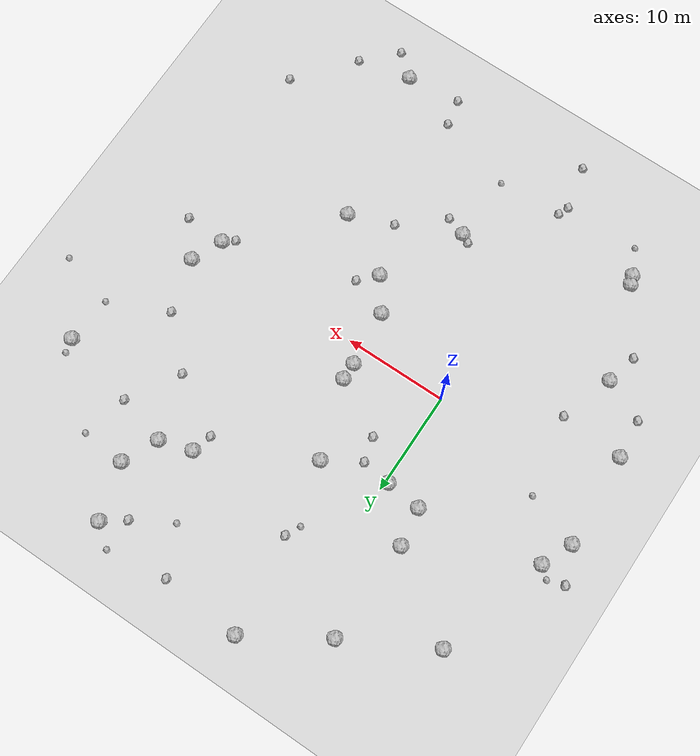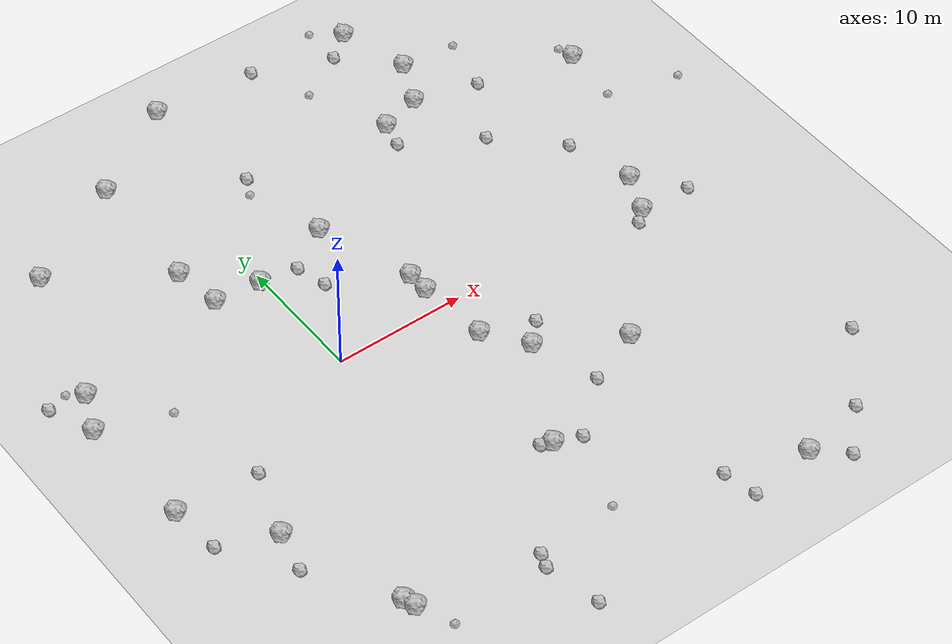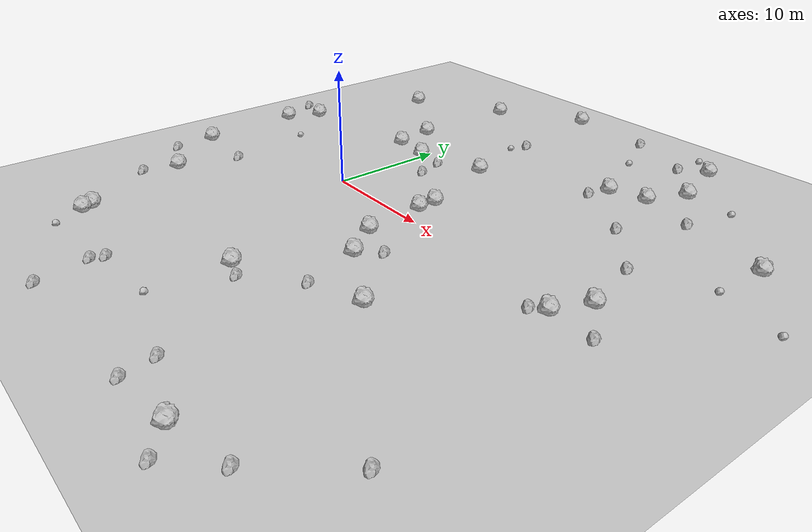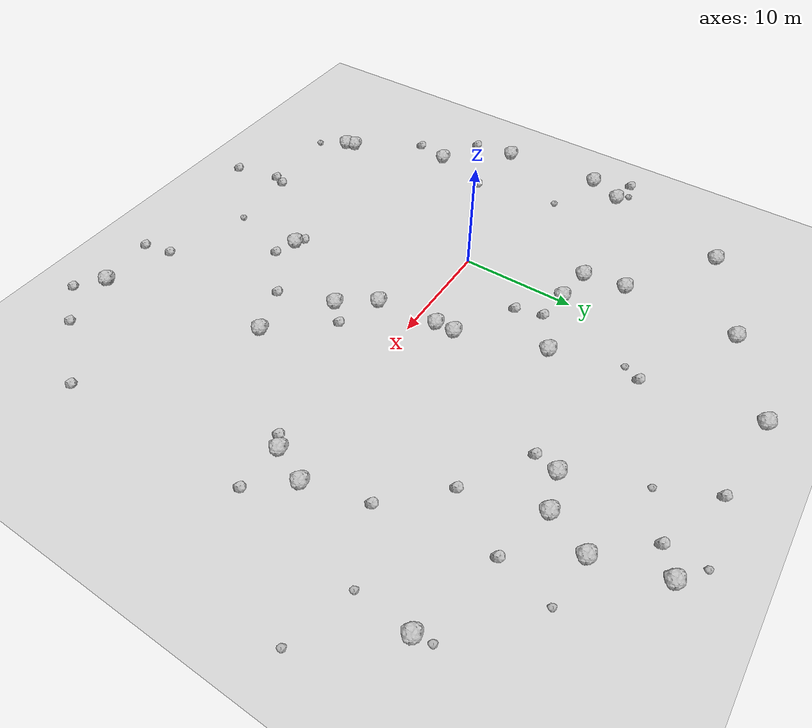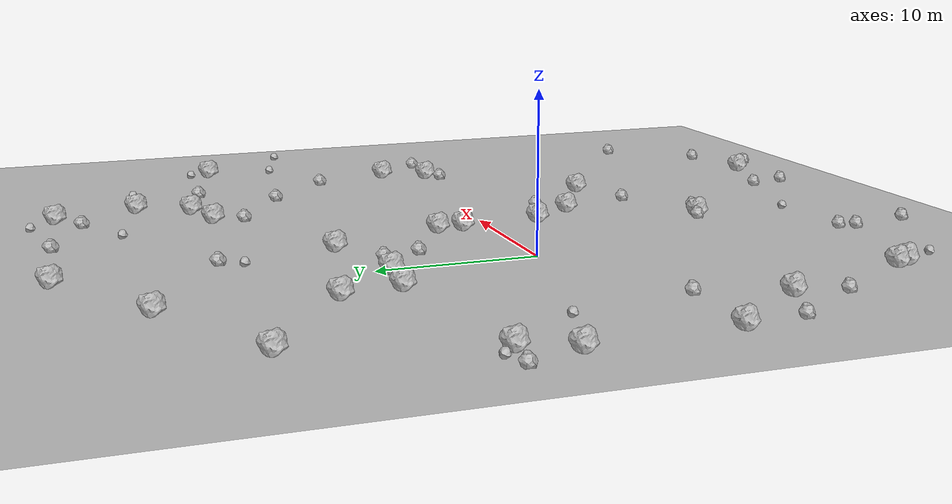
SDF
<sdf version="1.6">
 <world name="default">
  <include><uri>model://custom_ground</uri></include>
  <include><uri>model://sun</uri></include>
  <model name="rock1_0_0">
   <include><uri>model://rock1</uri><pose>-3.738427115198281 9.504144964753863 0.5 0 0 0</pose></include>
  </model>
  <model name="rock1_0_1">
   <include><uri>model://rock1</uri><pose>-3.936543423529187 23.03565781235109 0.5 0 0 0</pose></include>
  </model>
  <model name="rock1_0_2">
   <include><uri>model://rock1</uri><pose>-15.478508543491502 7.579801884550001 0.5 0 0 0</pose></include>
  </model>
  <model name="rock1_0_3">
   <include><uri>model://rock1</uri><pose>19.154230941098746 26.34770567985283 0.5 0 0 0</pose></include>
  </model>
  <model name="rock1_0_4">
   <include><uri>model://rock1</uri><pose>-16.26952670117127 -4.461578754564503 0.5 0 0 0</pose></include>
  </model>
  <model name="rock1_0_5">
   <include><uri>model://rock1</uri><pose>15.943776720668993 16.52844910317186 0.5 0 0 0</pose></include>
  </model>
  <model name="rock1_0_6">
   <include><uri>model://rock1</uri><pose>-8.70427945747763 -18.990837485125937 0.5 0 0 0</pose></include>
  </model>
  <model name="rock1_0_7">
   <include><uri>model://rock1</uri><pose>8.453705279977676 1.7365136836152466 0.5 0 0 0</pose></include>
  </model>
  <model name="rock1_0_8">
   <include><uri>model://rock1</uri><pose>8.423877939947715 3.445662174818551 0.5 0 0 0</pose></include>
  </model>
  <model name="rock1_0_9">
   <include><uri>model://rock1</uri><pose>-8.395035605716787 -19.852879169549713 0.5 0 0 0</pose></include>
  </model>
  <model name="rock1_0_10">
   <include><uri>model://rock1</uri><pose>-0.26383050366483474 9.12248176850354 0.5 0 0 0</pose></include>
  </model>
  <model name="rock1_0_11">
   <include><uri>model://rock1</uri><pose>11.188383665316525 -6.680695017462053 0.5 0 0 0</pose></include>
  </model>
  <model name="rock1_0_12">
   <include><uri>model://rock1</uri><pose>8.991772287947537 -3.6726403704004937 0.5 0 0 0</pose></include>
  </model>
  <model name="rock1_0_13">
   <include><uri>model://rock1</uri><pose>19.106031934486246 17.47323544988634 0.5 0 0 0</pose></include>
  </model>
  <model name="rock1_0_14">
   <include><uri>model://rock1</uri><pose>20.69733186675945 20.93994824646586 0.5 0 0 0</pose></include>
  </model>
  <model name="rock1_0_15">
   <include><uri>model://rock1</uri><pose>-4.298889402488381 13.167860747408412 0.5 0 0 0</pose></include>
  </model>
  <model name="rock1_0_16">
   <include><uri>model://rock1</uri><pose>-16.774803432463234 4.585380853515822 0.5 0 0 0</pose></include>
  </model>
  <model name="rock1_0_17">
   <include><uri>model://rock1</uri><pose>25.33484628785105 -1.1552003946533453 0.5 0 0 0</pose></include>
  </model>
  <model name="rock1_0_18">
   <include><uri>model://rock1</uri><pose>3.4173082205525454 27.640051545276556 0.5 0 0 0</pose></include>
  </model>
  <model name="rock1_0_19">
   <include><uri>model://rock1</uri><pose>17.05080156257562 -10.013613309631179 0.5 0 0 0</pose></include>
  </model>
  <model name="rock1_0_20">
   <include><uri>model://rock1</uri><pose>5.934472380701209 10.839916025522193 0.5 0 0 0</pose></include>
  </model>
  <model name="rock1_0_21">
   <include><uri>model://rock1</uri><pose>6.9422198867153675 -14.408914886011415 0.5 0 0 0</pose></include>
  </model>
  <model name="rock1_0_22">
   <include><uri>model://rock1</uri><pose>26.659840950833612 1.8602126845654325 0.5 0 0 0</pose></include>
  </model>
  <model name="rock1_0_23">
   <include><uri>model://rock1</uri><pose>31.318294984057935 14.276614448736048 0.5 0 0 0</pose></include>
  </model>
  <model name="rock1_0_24">
   <include><uri>model://rock1</uri><pose>-11.841794358269308 -10.021645544380753 0.5 0 0 0</pose></include>
  </model>
  <model name="rock1_0_25">
   <include><uri>model://rock1</uri><pose>19.959483772943564 -25.055293831240625 0.5 0 0 0</pose></include>
  </model>
  <model name="rock1_0_26">
   <include><uri>model://rock1</uri><pose>-12.231818277003585 18.525813914747914 0.5 0 0 0</pose></include>
  </model>
  <model name="rock2_0_0">
   <include><uri>model://rock2</uri><pose>20.92491891618694 11.282802481234668 0.3 0 0 0</pose></include>
  </model>
  <model name="rock2_0_1">
   <include><uri>model://rock2</uri><pose>25.061482016633242 -23.89148712092303 0.3 0 0 0</pose></include>
  </model>
  <model name="rock2_0_2">
   <include><uri>model://rock2</uri><pose>24.311373767298008 -1.9713641077246251 0.3 0 0 0</pose></include>
  </model>
  <model name="rock2_0_3">
   <include><uri>model://rock2</uri><pose>1.0258429732905405 -26.469851667786003 0.3 0 0 0</pose></include>
  </model>
  <model name="rock2_0_4">
   <include><uri>model://rock2</uri><pose>14.730889429571135 -25.69195907071518 0.3 0 0 0</pose></include>
  </model>
  <model name="rock2_0_5">
   <include><uri>model://rock2</uri><pose>0.5018184939248442 -21.23433660515229 0.3 0 0 0</pose></include>
  </model>
  <model name="rock2_0_6">
   <include><uri>model://rock2</uri><pose>-15.934206170171489 -8.25265943751399 0.3 0 0 0</pose></include>
  </model>
  <model name="rock2_0_7">
   <include><uri>model://rock2</uri><pose>15.39085384517523 14.573471519445242 0.3 0 0 0</pose></include>
  </model>
  <model name="rock2_0_8">
   <include><uri>model://rock2</uri><pose>-18.212239185288098 7.982660107052908 0.3 0 0 0</pose></include>
  </model>
  <model name="rock2_0_9">
   <include><uri>model://rock2</uri><pose>11.222011443232581 27.095661951867605 0.3 0 0 0</pose></include>
  </model>
  <model name="rock2_0_10">
   <include><uri>model://rock2</uri><pose>-12.601658654719687 -13.081827269869812 0.3 0 0 0</pose></include>
  </model>
  <model name="rock2_0_11">
   <include><uri>model://rock2</uri><pose>3.179991363624776 6.396461722603519 0.3 0 0 0</pose></include>
  </model>
  <model name="rock2_0_12">
   <include><uri>model://rock2</uri><pose>8.850873877106384 -15.082201100498697 0.3 0 0 0</pose></include>
  </model>
  <model name="rock2_0_13">
   <include><uri>model://rock2</uri><pose>12.784190924195833 -11.656417043862927 0.3 0 0 0</pose></include>
  </model>
  <model name="rock2_0_14">
   <include><uri>model://rock2</uri><pose>29.558208153964607 -18.48935346312357 0.3 0 0 0</pose></include>
  </model>
  <model name="rock2_0_15">
   <include><uri>model://rock2</uri><pose>14.20573084487718 -23.124026574218895 0.3 0 0 0</pose></include>
  </model>
  <model name="rock2_0_16">
   <include><uri>model://rock2</uri><pose>0.0940926043288961 -22.281797594003255 0.3 0 0 0</pose></include>
  </model>
  <model name="rock2_0_17">
   <include><uri>model://rock2</uri><pose>-10.134343892487207 -4.863221368710679 0.3 0 0 0</pose></include>
  </model>
  <model name="rock2_0_18">
   <include><uri>model://rock2</uri><pose>29.29203328929445 -1.3555420939547638 0.3 0 0 0</pose></include>
  </model>
  <model name="rock2_0_19">
   <include><uri>model://rock2</uri><pose>22.107937766724497 -26.9270547774089 0.3 0 0 0</pose></include>
  </model>
  <model name="rock2_0_20">
   <include><uri>model://rock2</uri><pose>12.73569804358069 -5.050384309038595 0.3 0 0 0</pose></include>
  </model>
  <model name="rock2_0_21">
   <include><uri>model://rock2</uri><pose>6.087087975668602 -13.993865742669378 0.3 0 0 0</pose></include>
  </model>
  <model name="rock2_0_22">
   <include><uri>model://rock2</uri><pose>17.050772315796877 24.80583489243852 0.3 0 0 0</pose></include>
  </model>
  <model name="rock2_0_23">
   <include><uri>model://rock2</uri><pose>23.898366094391918 16.200517595462685 0.3 0 0 0</pose></include>
  </model>
  <model name="rock2_0_24">
   <include><uri>model://rock2</uri><pose>25.23610911035528 7.061126469224341 0.3 0 0 0</pose></include>
  </model>
  <model name="rock2_0_25">
   <include><uri>model://rock2</uri><pose>4.699753296604499 18.14088267597719 0.3 0 0 0</pose></include>
  </model>
  <model name="rock2_0_26">
   <include><uri>model://rock2</uri><pose>2.5420269454578737 8.753312201231893 0.3 0 0 0</pose></include>
  </model>
  <model name="rock3_0_0">
   <include><uri>model://rock3</uri><pose>6.670441368557498 -20.90769256884716 0.2 0 0 0</pose></include>
  </model>
  <model name="rock3_0_1">
   <include><uri>model://rock3</uri><pose>13.306540348685779 22.6201140619005 0.2 0 0 0</pose></include>
  </model>
  <model name="rock3_0_2">
   <include><uri>model://rock3</uri><pose>-16.607045376999977 8.450816986583575 0.2 0 0 0</pose></include>
  </model>
  <model name="rock3_0_3">
   <include><uri>model://rock3</uri><pose>36.282648967112664 8.123211059709682 0.2 0 0 0</pose></include>
  </model>
  <model name="rock3_0_4">
   <include><uri>model://rock3</uri><pose>24.95470995009699 20.62578808241335 0.2 0 0 0</pose></include>
  </model>
  <model name="rock3_0_5">
   <include><uri>model://rock3</uri><pose>-11.64652162877794 2.820025509006882 0.2 0 0 0</pose></include>
  </model>
  <model name="rock3_0_6">
   <include><uri>model://rock3</uri><pose>17.081219032574722 27.97372518347629 0.2 0 0 0</pose></include>
  </model>
  <model name="rock3_0_7">
   <include><uri>model://rock3</uri><pose>31.00916167322766 15.621589499320343 0.2 0 0 0</pose></include>
  </model>
  <model name="rock3_0_8">
   <include><uri>model://rock3</uri><pose>30.894109500974814 9.644876372590232 0.2 0 0 0</pose></include>
  </model>
  <model name="rock3_0_9">
   <include><uri>model://rock3</uri><pose>3.9948996005910544 16.6854578328701 0.2 0 0 0</pose></include>
  </model>
  <model name="rock3_0_10">
   <include><uri>model://rock3</uri><pose>-7.261131065297466 -22.408306045063703 0.2 0 0 0</pose></include>
  </model>
 </world>
</sdf>
